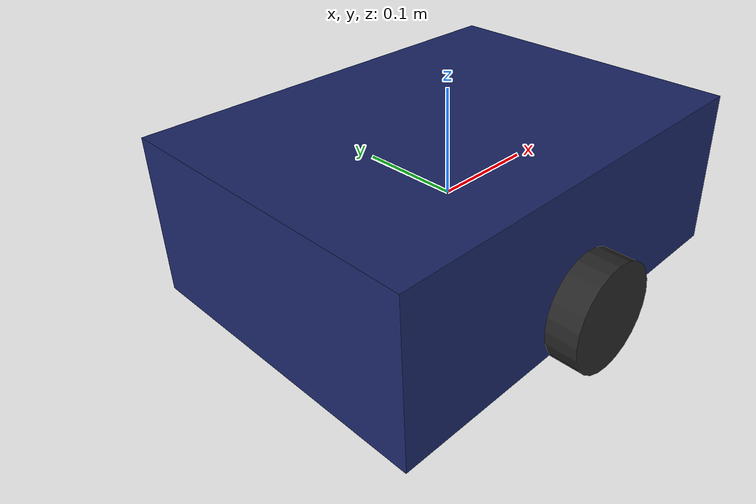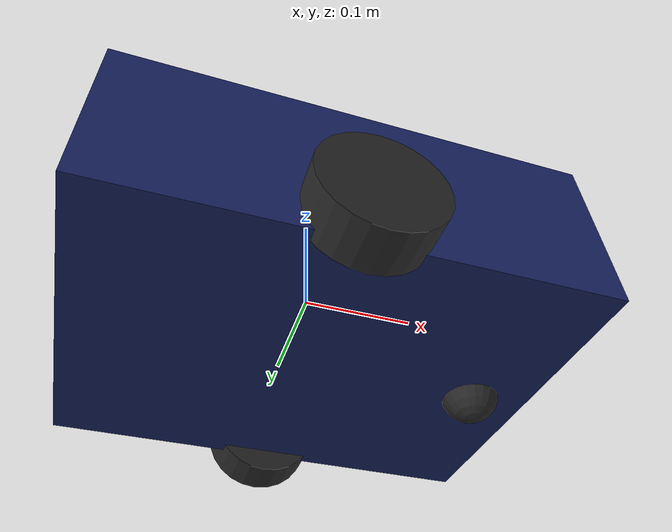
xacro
<?xml version="1.0"?>
<!-- ROS-side URDF for the pathfinder diff-drive car.
     This drives robot_state_publisher / TF only. The Gazebo simulation
     uses gazebo/car.sdf (which carries the DiffDrive plugin). -->
<robot name="pathfinder_car" xmlns:xacro="http://www.ros.org/wiki/xacro">

  <xacro:property name="base_size_x" value="0.40"/>
  <xacro:property name="base_size_y" value="0.30"/>
  <xacro:property name="base_size_z" value="0.15"/>
  <xacro:property name="base_mass"   value="2.0"/>

  <xacro:property name="wheel_radius"     value="0.05"/>
  <xacro:property name="wheel_width"      value="0.04"/>
  <xacro:property name="wheel_mass"       value="0.1"/>
  <xacro:property name="wheel_separation" value="0.32"/>

  <xacro:property name="caster_radius" value="0.025"/>
  <xacro:property name="caster_mass"   value="0.05"/>
  <xacro:property name="caster_x"      value="0.15"/>

  <material name="car_dark_blue">
    <color rgba="0.1 0.15 0.4 1.0"/>
  </material>
  <material name="wheel_dark_gray">
    <color rgba="0.15 0.15 0.15 1.0"/>
  </material>

  <link name="base_link">
    <visual>
      <geometry>
        <box size="${base_size_x} ${base_size_y} ${base_size_z}"/>
      </geometry>
      <material name="car_dark_blue"/>
    </visual>
    <collision>
      <geometry>
        <box size="${base_size_x} ${base_size_y} ${base_size_z}"/>
      </geometry>
    </collision>
    <inertial>
      <mass value="${base_mass}"/>
      <inertia
        ixx="${base_mass * (base_size_y*base_size_y + base_size_z*base_size_z) / 12.0}"
        iyy="${base_mass * (base_size_x*base_size_x + base_size_z*base_size_z) / 12.0}"
        izz="${base_mass * (base_size_x*base_size_x + base_size_y*base_size_y) / 12.0}"
        ixy="0" ixz="0" iyz="0"/>
    </inertial>
  </link>

  <xacro:macro name="drive_wheel" params="suffix y_sign">
    <link name="wheel_${suffix}">
      <visual>
        <origin xyz="0 0 0" rpy="${pi/2} 0 0"/>
        <geometry>
          <cylinder radius="${wheel_radius}" length="${wheel_width}"/>
        </geometry>
        <material name="wheel_dark_gray"/>
      </visual>
      <collision>
        <origin xyz="0 0 0" rpy="${pi/2} 0 0"/>
        <geometry>
          <cylinder radius="${wheel_radius}" length="${wheel_width}"/>
        </geometry>
      </collision>
      <inertial>
        <mass value="${wheel_mass}"/>
        <inertia
          ixx="${wheel_mass * (3*wheel_radius*wheel_radius + wheel_width*wheel_width) / 12.0}"
          iyy="${wheel_mass * wheel_radius*wheel_radius / 2.0}"
          izz="${wheel_mass * (3*wheel_radius*wheel_radius + wheel_width*wheel_width) / 12.0}"
          ixy="0" ixz="0" iyz="0"/>
      </inertial>
    </link>
    <!-- Wheels mounted at y = +-(wheel_separation/2); axis along y -->
    <joint name="${suffix}_wheel_joint" type="continuous">
      <parent link="base_link"/>
      <child link="wheel_${suffix}"/>
      <origin xyz="0 ${y_sign * wheel_separation / 2.0} ${-base_size_z/2 + wheel_radius - 0.02}" rpy="0 0 0"/>
      <axis xyz="0 1 0"/>
    </joint>
  </xacro:macro>

  <xacro:drive_wheel suffix="left"  y_sign="1"/>
  <xacro:drive_wheel suffix="right" y_sign="-1"/>

  <link name="caster_link">
    <visual>
      <geometry>
        <sphere radius="${caster_radius}"/>
      </geometry>
      <material name="wheel_dark_gray"/>
    </visual>
    <collision>
      <geometry>
        <sphere radius="${caster_radius}"/>
      </geometry>
    </collision>
    <inertial>
      <mass value="${caster_mass}"/>
      <inertia
        ixx="${2.0 * caster_mass * caster_radius * caster_radius / 5.0}"
        iyy="${2.0 * caster_mass * caster_radius * caster_radius / 5.0}"
        izz="${2.0 * caster_mass * caster_radius * caster_radius / 5.0}"
        ixy="0" ixz="0" iyz="0"/>
    </inertial>
  </link>
  <!-- Free-swivel passive caster at the front. Caster bottom is aligned with wheel
       bottom (base z = -0.095) so the caster doesn't drag into the ground. -->
  <joint name="caster_joint" type="fixed">
    <parent link="base_link"/>
    <child link="caster_link"/>
    <origin xyz="${caster_x} 0 -0.07" rpy="0 0 0"/>
  </joint>

</robot>
